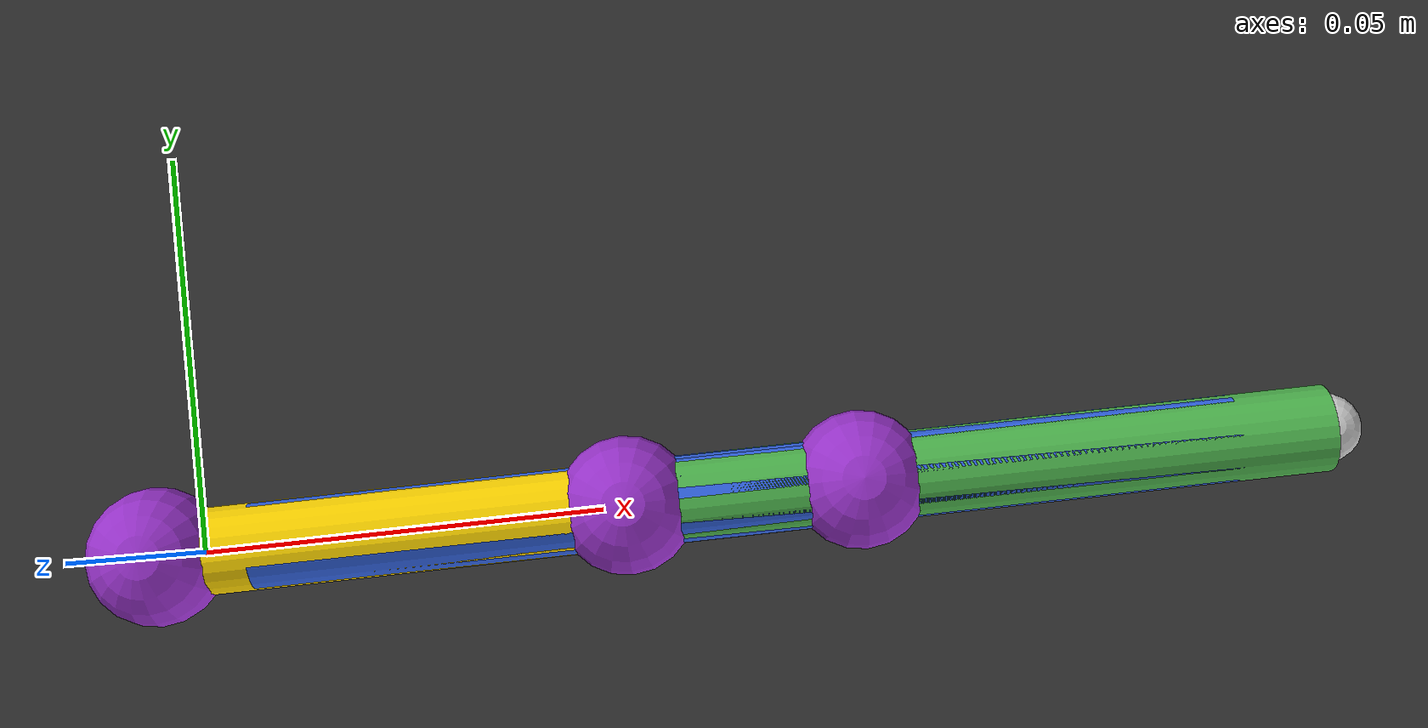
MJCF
<?xml version='1.0' encoding='UTF-8'?>
<mujoco>

    <option timestep="1e-4"/>
    <option gravity="0 0 -9.8"/>

    <asset>
        <texture type="skybox" builtin="gradient" rgb1="0.8 0.9 1" rgb2="0.2 0.3 0.6" width="265" height="256"/>
        <texture name="grid" type="2d" builtin="checker" rgb1="0.1 0.1 0.1" rgb2="0.3 0.3 0.3" width="300" height="300"/>
        <material name="grid" texture="grid" texrepeat="10 10" reflectance="0.1"/>

        <!-- Материалы с разными цветами для звеньев -->
        <material name="crank_material" rgba="1.0 0.84 0.0 1" specular="0.8" shininess="0.9"/>
        <material name="connecting_rod_material" rgba="0.2 0.4 0.9 1" specular="0.7" shininess="0.8"/>
        <material name="rocker_material" rgba="0.3 0.7 0.3 1" specular="0.7" shininess="0.8"/>
        <material name="joint_material" rgba="0.9 0.2 0.2 1" specular="1.0" shininess="1.0"/>
        <material name="fixed_material" rgba="0.6 0.2 0.8 1" specular="0.6" shininess="0.7"/>
    </asset>

    <worldbody>
        <light pos="0 0 10" diffuse="0.8 0.8 0.8" specular="0.5 0.5 0.5"/>
        <light pos="2 2 5" diffuse="0.5 0.5 0.5" specular="0.3 0.3 0.3"/>
        <geom type="plane" size="0.5 0.5 0.1" material="grid"/>

        <!-- Фиксированные точки -->
        <site name="fixed_O" pos="0 0 0.02" size="0.008" material="fixed_material"/>
        <site name="fixed_C" pos="0.054 0 0.02" size="0.008" material="fixed_material"/>
        <site name="fixed_D" pos="0.081 0 0.02" size="0.008" material="fixed_material"/>

        <!-- ОСНОВНАЯ ЦЕПОЧКА O-A-B - КРИВОШИП (ЗОЛОТОЙ) -->
        <body name="OAB" pos="0 0 0.02" euler="0 0 0">
            <joint name="O" type="hinge" axis="0 -1 0" damping="0.1"/>
            <geom name="point O" type="sphere" pos="0 0 0" size="0.008" material="joint_material"/>
            <geom name="link OA" type="cylinder" pos="0.027 0 0" size="0.005 0.027" material="crank_material" euler="0 90 0"/>
            <site name="sA" size="0.004" pos="0.054 0 0" rgba="1 1 1 0.8"/>

            <body name="AB" pos="0.054 0 0" euler="0 0 0">
                <joint name="A" type="ball" damping="0.1"/>
                <geom name="point A" type="sphere" pos="0 0 0" size="0.008" material="joint_material"/>
                <geom name="link AB" type="cylinder" pos="0.0351 0 0" size="0.005 0.0351" material="connecting_rod_material" euler="0 90 0"/>
                <site name="sB" size="0.004" pos="0.0702 0 0" rgba="1 1 1 0.8"/>
            </body>
        </body>

        <!-- ЗВЕНО C-B - КОРОМЫСЛО (ЗЕЛЕНЫЙ) -->
        <body name="CB" pos="0.054 0 0.02" euler="0 0 0">
            <joint name="C" type="hinge" axis="0 -1 0" damping="0.1"/>
            <geom name="point C" type="sphere" pos="0 0 0" size="0.008" material="joint_material"/>
            <geom name="link CB" type="cylinder" pos="0.0405 0 0" size="0.005 0.0405" material="rocker_material" euler="0 90 0"/>
            <site name="sB_CB" size="0.004" pos="0.081 0 0" rgba="1 1 1 0.8"/>
        </body>

        <!-- ЗВЕНО D-B (увеличено до 0.5) - ДОПОЛНИТЕЛЬНОЕ ЗВЕНО -->
        <body name="DB" pos="0.081 0 0.02" euler="0 0 0">
            <joint name="D" type="hinge" axis="0 -1 0" damping="0.1"/>
            <geom name="point D" type="sphere" pos="0 0 0" size="0.008" material="joint_material"/>
            <geom name="link DB" type="cylinder" pos="-0.035 0 0" size="0.005 0.035" material="connecting_rod_material" euler="0 90 0"/>
            <site name="sB_DB" size="0.004" pos="-0.07 0 0" rgba="1 1 1 0.8"/>
        </body>

    </worldbody>

    <equality>
        <!-- СОЕДИНЕНИЕ ВСЕХ ТРЕХ ЗВЕНЬЕВ В ТОЧКЕ B -->
        <connect site1="sB" site2="sB_CB"/>
        <connect site1="sB" site2="sB_DB"/>
    </equality>

</mujoco>
